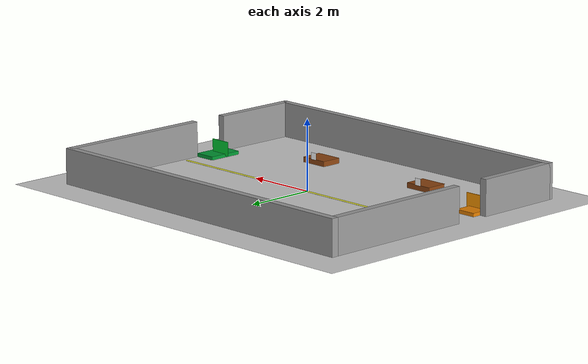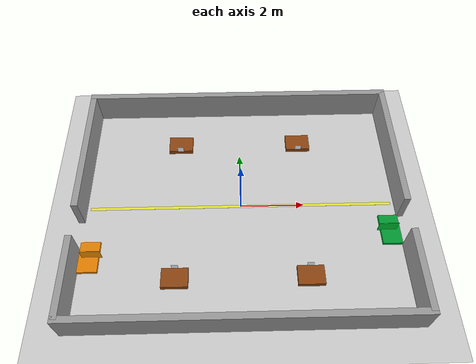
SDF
<?xml version="1.0"?>
<sdf version="1.11">
  <world name="galp_amr_attach">

    <physics name="1ms" type="ignored">
      <max_step_size>0.001</max_step_size>
      <real_time_factor>1.0</real_time_factor>
    </physics>

    <plugin filename="gz-sim-physics-system"        name="gz::sim::systems::Physics"/>
    <plugin filename="gz-sim-user-commands-system"  name="gz::sim::systems::UserCommands"/>
    <plugin filename="gz-sim-scene-broadcaster-system" name="gz::sim::systems::SceneBroadcaster"/>
    <plugin filename="gz-sim-sensors-system"        name="gz::sim::systems::Sensors">
      <render_engine>ogre2</render_engine>
    </plugin>
    <plugin filename="gz-sim-imu-system"            name="gz::sim::systems::Imu"/>
    <plugin filename="gz-sim-navsat-system"         name="gz::sim::systems::NavSat"/>

    <spherical_coordinates>
      <surface_model>EARTH_WGS84</surface_model>
      <world_frame_orientation>ENU</world_frame_orientation>
      <latitude_deg>-23.5505</latitude_deg>
      <longitude_deg>-46.6333</longitude_deg>
      <elevation>760.0</elevation>
      <heading_deg>0</heading_deg>
    </spherical_coordinates>

    <!-- Iluminação -->
    <light type="directional" name="sun">
      <cast_shadows>true</cast_shadows>
      <pose>0 0 10 0 0 0</pose>
      <diffuse>0.8 0.8 0.8 1</diffuse>
      <specular>0.2 0.2 0.2 1</specular>
      <direction>-0.5 0.1 -0.9</direction>
    </light>

    <!-- Piso -->
    <model name="ground_plane">
      <static>true</static>
      <link name="link">
        <collision name="collision">
          <geometry><plane><normal>0 0 1</normal><size>20 20</size></plane></geometry>
        </collision>
        <visual name="visual">
          <geometry><plane><normal>0 0 1</normal><size>20 20</size></plane></geometry>
          <material>
            <ambient>0.8 0.8 0.8 1</ambient>
            <diffuse>0.8 0.8 0.8 1</diffuse>
          </material>
        </visual>
      </link>
    </model>

    <!-- Parede Norte (y=+4) -->
    <model name="wall_norte">
      <static>true</static>
      <pose>0 4 0.5 0 0 0</pose>
      <link name="link">
        <collision name="col"><geometry><box><size>10.2 0.2 1.0</size></box></geometry></collision>
        <visual name="vis">
          <geometry><box><size>10.2 0.2 1.0</size></box></geometry>
          <material><ambient>0.6 0.6 0.6 1</ambient><diffuse>0.6 0.6 0.6 1</diffuse></material>
        </visual>
      </link>
    </model>

    <!-- Parede Sul (y=-4) -->
    <model name="wall_sul">
      <static>true</static>
      <pose>0 -4 0.5 0 0 0</pose>
      <link name="link">
        <collision name="col"><geometry><box><size>10.2 0.2 1.0</size></box></geometry></collision>
        <visual name="vis">
          <geometry><box><size>10.2 0.2 1.0</size></box></geometry>
          <material><ambient>0.6 0.6 0.6 1</ambient><diffuse>0.6 0.6 0.6 1</diffuse></material>
        </visual>
      </link>
    </model>

    <!-- Parede Oeste (x=-5) — com vão para a DOCA -->
    <model name="wall_oeste_norte">
      <static>true</static>
      <pose>-5 1.75 0.5 0 0 0</pose>
      <link name="link">
        <collision name="col"><geometry><box><size>0.2 4.5 1.0</size></box></geometry></collision>
        <visual name="vis">
          <geometry><box><size>0.2 4.5 1.0</size></box></geometry>
          <material><ambient>0.6 0.6 0.6 1</ambient><diffuse>0.6 0.6 0.6 1</diffuse></material>
        </visual>
      </link>
    </model>
    <model name="wall_oeste_sul">
      <static>true</static>
      <pose>-5 -2.75 0.5 0 0 0</pose>
      <link name="link">
        <collision name="col"><geometry><box><size>0.2 2.5 1.0</size></box></geometry></collision>
        <visual name="vis">
          <geometry><box><size>0.2 2.5 1.0</size></box></geometry>
          <material><ambient>0.6 0.6 0.6 1</ambient><diffuse>0.6 0.6 0.6 1</diffuse></material>
        </visual>
      </link>
    </model>

    <!-- Parede Leste (x=+5) — com vão para a EXPEDIÇÃO -->
    <model name="wall_leste_norte">
      <static>true</static>
      <pose>5 1.75 0.5 0 0 0</pose>
      <link name="link">
        <collision name="col"><geometry><box><size>0.2 4.5 1.0</size></box></geometry></collision>
        <visual name="vis">
          <geometry><box><size>0.2 4.5 1.0</size></box></geometry>
          <material><ambient>0.6 0.6 0.6 1</ambient><diffuse>0.6 0.6 0.6 1</diffuse></material>
        </visual>
      </link>
    </model>
    <model name="wall_leste_sul">
      <static>true</static>
      <pose>5 -2.75 0.5 0 0 0</pose>
      <link name="link">
        <collision name="col"><geometry><box><size>0.2 2.5 1.0</size></box></geometry></collision>
        <visual name="vis">
          <geometry><box><size>0.2 2.5 1.0</size></box></geometry>
          <material><ambient>0.6 0.6 0.6 1</ambient><diffuse>0.6 0.6 0.6 1</diffuse></material>
        </visual>
      </link>
    </model>

    <!-- ═══════════════════════════════════════════════
         DOCA  (lado oeste, y ∈ [-2, -1.5])
         ═══════════════════════════════════════════════ -->
    <!-- Plataforma da doca -->
    <model name="doca_plataforma">
      <static>true</static>
      <pose>-4.6 -1.75 0.05 0 0 0</pose>
      <link name="link">
        <collision name="col"><geometry><box><size>0.6 1.0 0.1</size></box></geometry></collision>
        <visual name="vis">
          <geometry><box><size>0.6 1.0 0.1</size></box></geometry>
          <material><ambient>0.9 0.5 0.0 1</ambient><diffuse>0.9 0.5 0.0 1</diffuse></material>
        </visual>
      </link>
    </model>
    <!-- Sinalização DOCA -->
    <model name="doca_sign">
      <static>true</static>
      <pose>-4.5 -1.75 0.25 0 0 1.5708</pose>
      <link name="link">
        <visual name="vis">
          <geometry><box><size>0.02 0.6 0.4</size></box></geometry>
          <material><ambient>1.0 0.6 0.0 1</ambient><diffuse>1.0 0.6 0.0 1</diffuse></material>
        </visual>
      </link>
    </model>

    <!-- ═══════════════════════════════════════════════
         EXPEDIÇÃO  (lado leste, y ∈ [-1.5, -0.5])
         ═══════════════════════════════════════════════ -->
    <model name="expedicao_plataforma">
      <static>true</static>
      <pose>4.6 -1.0 0.05 0 0 0</pose>
      <link name="link">
        <collision name="col"><geometry><box><size>0.6 1.0 0.1</size></box></geometry></collision>
        <visual name="vis">
          <geometry><box><size>0.6 1.0 0.1</size></box></geometry>
          <material><ambient>0.0 0.6 0.2 1</ambient><diffuse>0.0 0.6 0.2 1</diffuse></material>
        </visual>
      </link>
    </model>
    <model name="expedicao_sign">
      <static>true</static>
      <pose>4.5 -1.0 0.25 0 0 1.5708</pose>
      <link name="link">
        <visual name="vis">
          <geometry><box><size>0.02 0.6 0.4</size></box></geometry>
          <material><ambient>0.0 0.8 0.2 1</ambient><diffuse>0.0 0.8 0.2 1</diffuse></material>
        </visual>
      </link>
    </model>

    <!-- Pallet 1 — Norte-Oeste  (-2.0, 2.5) -->
    <model name="pallet_1">
      <static>false</static>
      <pose>-2.0 2.5 0.075 0 0 0</pose>
      <link name="link">
        <inertial>
          <mass>20.0</mass>
          <inertia>
            <ixx>0.6375</ixx>
            <ixy>0</ixy>
            <ixz>0</ixz>
            <iyy>1.1042</iyy>
            <iyz>0</iyz>
            <izz>1.6667</izz>
          </inertia>
        </inertial>
        <collision name="col"><geometry><box><size>0.8 0.6 0.15</size></box></geometry></collision>
        <visual name="vis">
          <geometry><box><size>0.8 0.6 0.15</size></box></geometry>
          <material><ambient>0.55 0.27 0.07 1</ambient><diffuse>0.55 0.27 0.07 1</diffuse></material>
        </visual>
        <visual name="apriltag_1">
          <pose>0 -0.306 0.16 0 0 0</pose>
          <geometry><box><size>0.20 0.004 0.20</size></box></geometry>
          <material>
            <lighting>false</lighting>
            <emissive>1 1 1 1</emissive>
            <pbr><metal><albedo_map>model://pallet_tags/materials/textures/tag36h11_id1.png</albedo_map><emissive_map>model://pallet_tags/materials/textures/tag36h11_id1.png</emissive_map><roughness>1.0</roughness><metalness>0.0</metalness></metal></pbr>
            <ambient>1 1 1 1</ambient><diffuse>1 1 1 1</diffuse><specular>0.1 0.1 0.1 1</specular>
          </material>
        </visual>
      </link>
    </model>

    <!-- Pallet 2 — Sul-Oeste  (-2.0, -2.5) -->
    <model name="pallet_2">
      <static>false</static>
      <pose>-2.0 -2.5 0.075 0 0 0</pose>
      <link name="link">
        <inertial>
          <mass>20.0</mass>
          <inertia>
            <ixx>0.6375</ixx>
            <ixy>0</ixy>
            <ixz>0</ixz>
            <iyy>1.1042</iyy>
            <iyz>0</iyz>
            <izz>1.6667</izz>
          </inertia>
        </inertial>
        <collision name="col"><geometry><box><size>0.8 0.6 0.15</size></box></geometry></collision>
        <visual name="vis">
          <geometry><box><size>0.8 0.6 0.15</size></box></geometry>
          <material><ambient>0.55 0.27 0.07 1</ambient><diffuse>0.55 0.27 0.07 1</diffuse></material>
        </visual>
        <visual name="apriltag_2">
          <pose>0 0.306 0.16 0 0 0</pose>
          <geometry><box><size>0.20 0.004 0.20</size></box></geometry>
          <material>
            <lighting>false</lighting>
            <emissive>1 1 1 1</emissive>
            <pbr><metal><albedo_map>model://pallet_tags/materials/textures/tag36h11_id2.png</albedo_map><emissive_map>model://pallet_tags/materials/textures/tag36h11_id2.png</emissive_map><roughness>1.0</roughness><metalness>0.0</metalness></metal></pbr>
            <ambient>1 1 1 1</ambient><diffuse>1 1 1 1</diffuse><specular>0.1 0.1 0.1 1</specular>
          </material>
        </visual>
      </link>
    </model>

    <!-- Pallet 3 — Norte-Leste  (2.0, 2.5) -->
    <model name="pallet_3">
      <static>false</static>
      <pose>2.0 2.5 0.075 0 0 0</pose>
      <link name="link">
        <inertial>
          <mass>20.0</mass>
          <inertia>
            <ixx>0.6375</ixx>
            <ixy>0</ixy>
            <ixz>0</ixz>
            <iyy>1.1042</iyy>
            <iyz>0</iyz>
            <izz>1.6667</izz>
          </inertia>
        </inertial>
        <collision name="col"><geometry><box><size>0.8 0.6 0.15</size></box></geometry></collision>
        <visual name="vis">
          <geometry><box><size>0.8 0.6 0.15</size></box></geometry>
          <material><ambient>0.55 0.27 0.07 1</ambient><diffuse>0.55 0.27 0.07 1</diffuse></material>
        </visual>
        <visual name="apriltag_3">
          <pose>0 -0.306 0.16 0 0 0</pose>
          <geometry><box><size>0.20 0.004 0.20</size></box></geometry>
          <material>
            <lighting>false</lighting>
            <emissive>1 1 1 1</emissive>
            <pbr><metal><albedo_map>model://pallet_tags/materials/textures/tag36h11_id3.png</albedo_map><emissive_map>model://pallet_tags/materials/textures/tag36h11_id3.png</emissive_map><roughness>1.0</roughness><metalness>0.0</metalness></metal></pbr>
            <ambient>1 1 1 1</ambient><diffuse>1 1 1 1</diffuse><specular>0.1 0.1 0.1 1</specular>
          </material>
        </visual>
      </link>
    </model>

    <!-- Pallet 4 — Sul-Leste  (2.0, -2.5) -->
    <model name="pallet_4">
      <static>false</static>
      <pose>2.0 -2.5 0.075 0 0 0</pose>
      <link name="link">
        <inertial>
          <mass>20.0</mass>
          <inertia>
            <ixx>0.6375</ixx>
            <ixy>0</ixy>
            <ixz>0</ixz>
            <iyy>1.1042</iyy>
            <iyz>0</iyz>
            <izz>1.6667</izz>
          </inertia>
        </inertial>
        <collision name="col"><geometry><box><size>0.8 0.6 0.15</size></box></geometry></collision>
        <visual name="vis">
          <geometry><box><size>0.8 0.6 0.15</size></box></geometry>
          <material><ambient>0.55 0.27 0.07 1</ambient><diffuse>0.55 0.27 0.07 1</diffuse></material>
        </visual>
        <visual name="apriltag_4">
          <pose>0 0.306 0.16 0 0 0</pose>
          <geometry><box><size>0.20 0.004 0.20</size></box></geometry>
          <material>
            <lighting>false</lighting>
            <emissive>1 1 1 1</emissive>
            <pbr><metal><albedo_map>model://pallet_tags/materials/textures/tag36h11_id4.png</albedo_map><emissive_map>model://pallet_tags/materials/textures/tag36h11_id4.png</emissive_map><roughness>1.0</roughness><metalness>0.0</metalness></metal></pbr>
            <ambient>1 1 1 1</ambient><diffuse>1 1 1 1</diffuse><specular>0.1 0.1 0.1 1</specular>
          </material>
        </visual>
      </link>
    </model>

    <!-- Marcações no piso (linhas de corredor) -->
    <model name="linha_corredor_central">
      <static>true</static>
      <pose>0 0 0.001 0 0 0</pose>
      <link name="link">
        <visual name="vis">
          <geometry><box><size>9.6 0.1 0.001</size></box></geometry>
          <material><ambient>0.9 0.9 0.2 1</ambient><diffuse>0.9 0.9 0.2 1</diffuse></material>
        </visual>
      </link>
    </model>

  </world>
</sdf>
